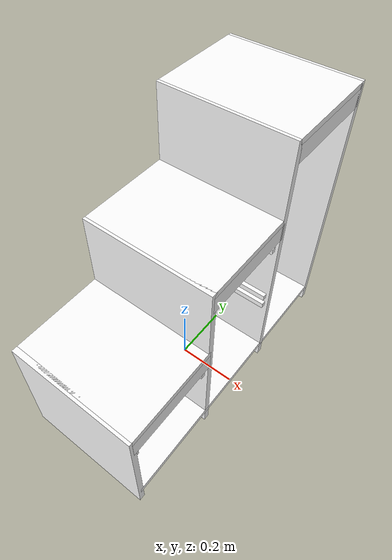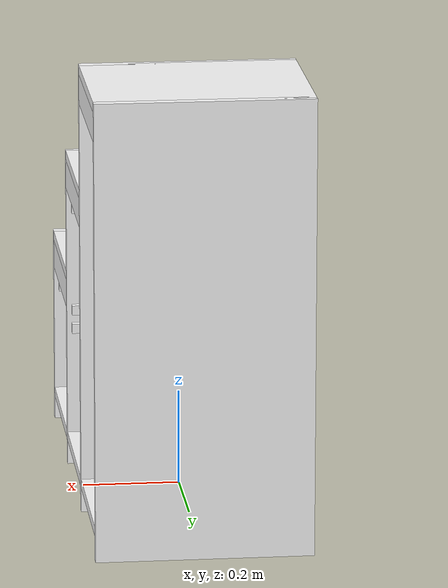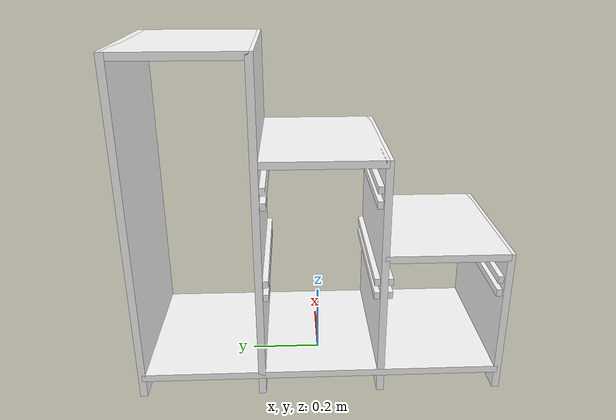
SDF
<?xml version="1.0" ?>
<sdf version="1.5">
  <model name="wrc_stair_like_drawer">
    <static>true</static>
    <link name="link">
      <inertial>
        <mass>1.0</mass>
      </inertial>
      <collision name="slit1">
        <pose>0 -0.495 0.21 0 0 0</pose>
        <geometry>
          <box>
            <size>0.44 0.02 0.42</size>
          </box>
        </geometry>
      </collision>
      <visual name="slit1_v">
        <pose>0 -0.495 0.21 0 0 0</pose>
        <geometry>
          <box>
            <size>0.44 0.02 0.42</size>
          </box>
        </geometry>
        <material>
          <name>white</name>
          <ambient>1.0 1.0 1.0 1.0</ambient>
          <diffuse>1.0 1.0 1.0 1.0</diffuse>
          <specular>0.1 0.1 0.1 1.0</specular>
          <shininess>5.0</shininess>
        </material>
      </visual>
      <collision name="holder_slit1_1_left_low">
        <pose>0 -0.48 0.30 0 0 0</pose>
        <geometry>
          <box>
            <size>0.42 0.02 0.02</size>
          </box>
        </geometry>
      </collision>
      <visual name="holder_slit1_1_left_low_v">
        <pose>0 -0.48 0.30 0 0 0</pose>
        <geometry>
          <box>
            <size>0.42 0.02 0.02</size>
          </box>
        </geometry>
        <material>
          <name>white</name>
          <ambient>1.0 1.0 1.0 1.0</ambient>
          <diffuse>1.0 1.0 1.0 1.0</diffuse>
          <specular>0.1 0.1 0.1 1.0</specular>
          <shininess>5.0</shininess>
        </material>
      </visual>
      <collision name="holder_slit1_1_left_high">
        <pose>0 -0.48 0.34 0 0 0</pose>
        <geometry>
          <box>
            <size>0.42 0.02 0.02</size>
          </box>
        </geometry>
      </collision>
      <visual name="holder_slit1_1_left_high_v">
        <pose>0 -0.48 0.34 0 0 0</pose>
        <geometry>
          <box>
            <size>0.42 0.02 0.02</size>
          </box>
        </geometry>
        <material>
          <name>white</name>
          <ambient>1.0 1.0 1.0 1.0</ambient>
          <diffuse>1.0 1.0 1.0 1.0</diffuse>
          <specular>0.1 0.1 0.1 1.0</specular>
          <shininess>5.0</shininess>
        </material>
      </visual>
      <collision name="holder_slit1_1_right_low">
        <pose>0 -0.18 0.30 0 0 0</pose>
        <geometry>
          <box>
            <size>0.42 0.02 0.02</size>
          </box>
        </geometry>
      </collision>
      <visual name="holder_slit1_1_right_low_v">
        <pose>0 -0.18 0.30 0 0 0</pose>
        <geometry>
          <box>
            <size>0.42 0.02 0.02</size>
          </box>
        </geometry>
        <material>
          <name>white</name>
          <ambient>1.0 1.0 1.0 1.0</ambient>
          <diffuse>1.0 1.0 1.0 1.0</diffuse>
          <specular>0.1 0.1 0.1 1.0</specular>
          <shininess>5.0</shininess>
        </material>
      </visual>
      <collision name="holder_slit1_1_right_high">
        <pose>0 -0.18 0.34 0 0 0</pose>
        <geometry>
          <box>
            <size>0.42 0.02 0.02</size>
          </box>
        </geometry>
      </collision>
      <visual name="holder_slit1_1_right_high_v">
        <pose>0 -0.18 0.34 0 0 0</pose>
        <geometry>
          <box>
            <size>0.42 0.02 0.02</size>
          </box>
        </geometry>
        <material>
          <name>white</name>
          <ambient>1.0 1.0 1.0 1.0</ambient>
          <diffuse>1.0 1.0 1.0 1.0</diffuse>
          <specular>0.1 0.1 0.1 1.0</specular>
          <shininess>5.0</shininess>
        </material>
      </visual>
      <collision name="slit2">
        <pose>0 -0.165 0.34 0 0 0</pose>
        <geometry>
          <box>
            <size>0.44 0.02 0.68</size>
          </box>
        </geometry>
      </collision>
      <visual name="slit2_v">
        <pose>0 -0.165 0.34 0 0 0</pose>
        <geometry>
          <box>
            <size>0.44 0.02 0.68</size>
          </box>
        </geometry>
        <material>
          <name>white</name>
          <ambient>1.0 1.0 1.0 1.0</ambient>
          <diffuse>1.0 1.0 1.0 1.0</diffuse>
          <specular>0.1 0.1 0.1 1.0</specular>
          <shininess>5.0</shininess>
        </material>
      </visual>
      <collision name="holder_slit2_1_left_low">
        <pose>0 -0.15 0.30 0 0 0</pose>
        <geometry>
          <box>
            <size>0.42 0.02 0.02</size>
          </box>
        </geometry>
      </collision>
      <visual name="holder_slit2_1_left_low_v">
        <pose>0 -0.15 0.30 0 0 0</pose>
        <geometry>
          <box>
            <size>0.42 0.02 0.02</size>
          </box>
        </geometry>
        <material>
          <name>white</name>
          <ambient>1.0 1.0 1.0 1.0</ambient>
          <diffuse>1.0 1.0 1.0 1.0</diffuse>
          <specular>0.1 0.1 0.1 1.0</specular>
          <shininess>5.0</shininess>
        </material>
      </visual>
      <collision name="holder_slit2_1_left_high">
        <pose>0 -0.15 0.34 0 0 0</pose>
        <geometry>
          <box>
            <size>0.42 0.02 0.02</size>
          </box>
        </geometry>
      </collision>
      <visual name="holder_slit2_1_left_high_v">
        <pose>0 -0.15 0.34 0 0 0</pose>
        <geometry>
          <box>
            <size>0.42 0.02 0.02</size>
          </box>
        </geometry>
        <material>
          <name>white</name>
          <ambient>1.0 1.0 1.0 1.0</ambient>
          <diffuse>1.0 1.0 1.0 1.0</diffuse>
          <specular>0.1 0.1 0.1 1.0</specular>
          <shininess>5.0</shininess>
        </material>
      </visual>
      <collision name="holder_slit2_1_right_low">
        <pose>0 0.15 0.30 0 0 0</pose>
        <geometry>
          <box>
            <size>0.42 0.02 0.02</size>
          </box>
        </geometry>
      </collision>
      <visual name="holder_slit2_1_right_low_v">
        <pose>0 0.15 0.30 0 0 0</pose>
        <geometry>
          <box>
            <size>0.42 0.02 0.02</size>
          </box>
        </geometry>
        <material>
          <name>white</name>
          <ambient>1.0 1.0 1.0 1.0</ambient>
          <diffuse>1.0 1.0 1.0 1.0</diffuse>
          <specular>0.1 0.1 0.1 1.0</specular>
          <shininess>5.0</shininess>
        </material>
      </visual>
      <collision name="holder_slit2_1_right_high">
        <pose>0 0.15 0.34 0 0 0</pose>
        <geometry>
          <box>
            <size>0.42 0.02 0.02</size>
          </box>
        </geometry>
      </collision>
      <visual name="holder_slit2_1_right_high_v">
        <pose>0 0.15 0.34 0 0 0</pose>
        <geometry>
          <box>
            <size>0.42 0.02 0.02</size>
          </box>
        </geometry>
        <material>
          <name>white</name>
          <ambient>1.0 1.0 1.0 1.0</ambient>
          <diffuse>1.0 1.0 1.0 1.0</diffuse>
          <specular>0.1 0.1 0.1 1.0</specular>
          <shininess>5.0</shininess>
        </material>
      </visual>
      <collision name="holder_slit2_2_left_low">
        <pose>0 -0.15 0.56 0 0 0</pose>
        <geometry>
          <box>
            <size>0.42 0.02 0.02</size>
          </box>
        </geometry>
      </collision>
      <visual name="holder_slit2_2_left_low_v">
        <pose>0 -0.15 0.56 0 0 0</pose>
        <geometry>
          <box>
            <size>0.42 0.02 0.02</size>
          </box>
        </geometry>
        <material>
          <name>white</name>
          <ambient>1.0 1.0 1.0 1.0</ambient>
          <diffuse>1.0 1.0 1.0 1.0</diffuse>
          <specular>0.1 0.1 0.1 1.0</specular>
          <shininess>5.0</shininess>
        </material>
      </visual>
      <collision name="holder_slit2_2_left_high">
        <pose>0 -0.15 0.60 0 0 0</pose>
        <geometry>
          <box>
            <size>0.42 0.02 0.02</size>
          </box>
        </geometry>
      </collision>
      <visual name="holder_slit2_2_left_high_v">
        <pose>0 -0.15 0.60 0 0 0</pose>
        <geometry>
          <box>
            <size>0.42 0.02 0.02</size>
          </box>
        </geometry>
        <material>
          <name>white</name>
          <ambient>1.0 1.0 1.0 1.0</ambient>
          <diffuse>1.0 1.0 1.0 1.0</diffuse>
          <specular>0.1 0.1 0.1 1.0</specular>
          <shininess>5.0</shininess>
        </material>
      </visual>
      <collision name="holder_slit2_2_right_low">
        <pose>0 0.15 0.56 0 0 0</pose>
        <geometry>
          <box>
            <size>0.42 0.02 0.02</size>
          </box>
        </geometry>
      </collision>
      <visual name="holder_slit2_2_right_low_v">
        <pose>0 0.15 0.56 0 0 0</pose>
        <geometry>
          <box>
            <size>0.42 0.02 0.02</size>
          </box>
        </geometry>
        <material>
          <name>white</name>
          <ambient>1.0 1.0 1.0 1.0</ambient>
          <diffuse>1.0 1.0 1.0 1.0</diffuse>
          <specular>0.1 0.1 0.1 1.0</specular>
          <shininess>5.0</shininess>
        </material>
      </visual>
      <collision name="holder_slit2_2_right_high">
        <pose>0 0.15 0.60 0 0 0</pose>
        <geometry>
          <box>
            <size>0.42 0.02 0.02</size>
          </box>
        </geometry>
      </collision>
      <visual name="holder_slit2_2_right_high_v">
        <pose>0 0.15 0.60 0 0 0</pose>
        <geometry>
          <box>
            <size>0.42 0.02 0.02</size>
          </box>
        </geometry>
        <material>
          <name>white</name>
          <ambient>1.0 1.0 1.0 1.0</ambient>
          <diffuse>1.0 1.0 1.0 1.0</diffuse>
          <specular>0.1 0.1 0.1 1.0</specular>
          <shininess>5.0</shininess>
        </material>
      </visual>
      <collision name="slit3">
        <pose>0 0.165 0.47 0 0 0</pose>
        <geometry>
          <box>
            <size>0.44 0.02 0.94</size>
          </box>
        </geometry>
      </collision>
      <visual name="slit3_v">
        <pose>0 0.165 0.47 0 0 0</pose>
        <geometry>
          <box>
            <size>0.44 0.02 0.94</size>
          </box>
        </geometry>
        <material>
          <name>white</name>
          <ambient>1.0 1.0 1.0 1.0</ambient>
          <diffuse>1.0 1.0 1.0 1.0</diffuse>
          <specular>0.1 0.1 0.1 1.0</specular>
          <shininess>5.0</shininess>
        </material>
      </visual>
      <collision name="slit4">
        <pose>0 0.495 0.47 0 0 0</pose>
        <geometry>
          <box>
            <size>0.44 0.02 0.94</size>
          </box>
        </geometry>
      </collision>
      <visual name="slit4_v">
        <pose>0 0.495 0.47 0 0 0</pose>
        <geometry>
          <box>
            <size>0.44 0.02 0.94</size>
          </box>
        </geometry>
        <material>
          <name>white</name>
          <ambient>1.0 1.0 1.0 1.0</ambient>
          <diffuse>1.0 1.0 1.0 1.0</diffuse>
          <specular>0.1 0.1 0.1 1.0</specular>
          <shininess>5.0</shininess>
        </material>
      </visual>
      <collision name="top1">
        <pose>0 -0.33 0.41 0 0 0</pose>
        <geometry>
          <box>
            <size>0.44 0.33 0.02</size>
          </box>
        </geometry>
      </collision>
      <visual name="top1_v">
        <pose>0 -0.33 0.41 0 0 0</pose>
        <geometry>
          <box>
            <size>0.44 0.33 0.02</size>
          </box>
        </geometry>
        <material>
          <name>white</name>
          <ambient>1.0 1.0 1.0 1.0</ambient>
          <diffuse>1.0 1.0 1.0 1.0</diffuse>
          <specular>0.1 0.1 0.1 1.0</specular>
          <shininess>5.0</shininess>
        </material>
      </visual>
      <collision name="top1_front">
        <pose>0.21 -0.33 0.37 0 0 0</pose>
        <geometry>
          <box>
            <size>0.02 0.33 0.06</size>
          </box>
        </geometry>
      </collision>
      <visual name="top1_front_v">
        <pose>0.21 -0.33 0.37 0 0 0</pose>
        <geometry>
          <box>
            <size>0.02 0.33 0.06</size>
          </box>
        </geometry>
        <material>
          <name>white</name>
          <ambient>1.0 1.0 1.0 1.0</ambient>
          <diffuse>1.0 1.0 1.0 1.0</diffuse>
          <specular>0.1 0.1 0.1 1.0</specular>
          <shininess>5.0</shininess>
        </material>
      </visual>
      <collision name="top2">
        <pose>0 0 0.67 0 0 0</pose>
        <geometry>
          <box>
            <size>0.44 0.33 0.02</size>
          </box>
        </geometry>
      </collision>
      <visual name="top2_v">
        <pose>0 0 0.67 0 0 0</pose>
        <geometry>
          <box>
            <size>0.44 0.33 0.02</size>
          </box>
        </geometry>
        <material>
          <name>white</name>
          <ambient>1.0 1.0 1.0 1.0</ambient>
          <diffuse>1.0 1.0 1.0 1.0</diffuse>
          <specular>0.1 0.1 0.1 1.0</specular>
          <shininess>5.0</shininess>
        </material>
      </visual>
      <collision name="top2_front">
        <pose>0.21 0 0.63 0 0 0</pose>
        <geometry>
          <box>
            <size>0.02 0.33 0.06</size>
          </box>
        </geometry>
      </collision>
      <visual name="top2_front_v">
        <pose>0.21 0 0.63 0 0 0</pose>
        <geometry>
          <box>
            <size>0.02 0.33 0.06</size>
          </box>
        </geometry>
        <material>
          <name>white</name>
          <ambient>1.0 1.0 1.0 1.0</ambient>
          <diffuse>1.0 1.0 1.0 1.0</diffuse>
          <specular>0.1 0.1 0.1 1.0</specular>
          <shininess>5.0</shininess>
        </material>
      </visual>
      <collision name="top3">
        <pose>0 0.33 0.93 0 0 0</pose>
        <geometry>
          <box>
            <size>0.44 0.33 0.02</size>
          </box>
        </geometry>
      </collision>
      <visual name="top3_v">
        <pose>0 0.33 0.93 0 0 0</pose>
        <geometry>
          <box>
            <size>0.44 0.33 0.02</size>
          </box>
        </geometry>
        <material>
          <name>white</name>
          <ambient>1.0 1.0 1.0 1.0</ambient>
          <diffuse>1.0 1.0 1.0 1.0</diffuse>
          <specular>0.1 0.1 0.1 1.0</specular>
          <shininess>5.0</shininess>
        </material>
      </visual>
      <collision name="top3_front">
        <pose>0.21 0.33 0.89 0 0 0</pose>
        <geometry>
          <box>
            <size>0.02 0.33 0.06</size>
          </box>
        </geometry>
      </collision>
      <visual name="top3_front_v">
        <pose>0.21 0.33 0.89 0 0 0</pose>
        <geometry>
          <box>
            <size>0.02 0.33 0.06</size>
          </box>
        </geometry>
        <material>
          <name>white</name>
          <ambient>1.0 1.0 1.0 1.0</ambient>
          <diffuse>1.0 1.0 1.0 1.0</diffuse>
          <specular>0.1 0.1 0.1 1.0</specular>
          <shininess>5.0</shininess>
        </material>
      </visual>
      <collision name="bottom">
        <pose>0 0 0.06 0 0 0</pose>
        <geometry>
          <box>
            <size>0.44 0.99 0.02</size>
          </box>
        </geometry>
      </collision>
      <visual name="bottom_v">
        <pose>0 0 0.06 0 0 0</pose>
        <geometry>
          <box>
            <size>0.44 0.99 0.02</size>
          </box>
        </geometry>
        <material>
          <name>white</name>
          <ambient>1.0 1.0 1.0 1.0</ambient>
          <diffuse>1.0 1.0 1.0 1.0</diffuse>
          <specular>0.1 0.1 0.1 1.0</specular>
          <shininess>5.0</shininess>
        </material>
      </visual>
    </link>
  </model>
</sdf>
